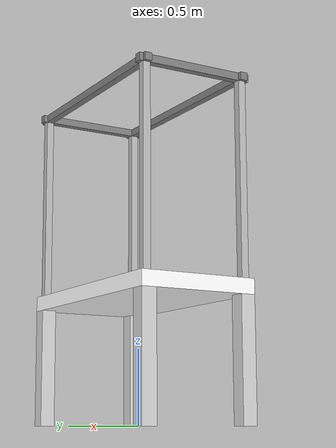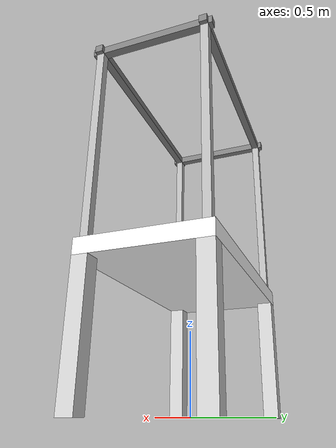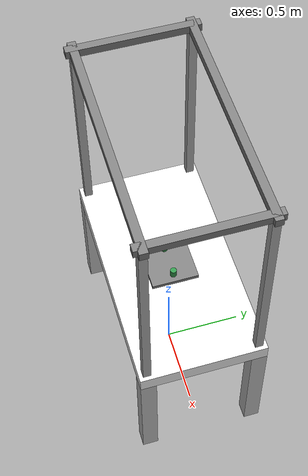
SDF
<?xml version="1.0" ?>
<sdf version="1.6">
  <model name="mesa_completa_con_cilindros">
    <static>true</static>

    <!-- Mesa -->
    <link name="table_link">
      <!-- Superficie de la mesa -->
      <visual name="table_top">
        <geometry>
          <box>
            <size>1.5 0.8 0.1</size>
          </box>
        </geometry>
        <material>
          <ambient>1 1 1 1</ambient>
          <diffuse>1 1 1 1</diffuse>
        </material>
        <pose>0 0 0.85 0 0 0</pose>
      </visual>

      <!-- Patas de la mesa -->
      <visual name="leg1">
        <geometry>
          <box>
            <size>0.1 0.1 0.8</size>
          </box>
        </geometry>
        <material>
          <ambient>0.8 0.8 0.8 1</ambient>
        </material>
        <pose>-0.7 -0.35 0.4 0 0 0</pose>
      </visual>

      <visual name="leg2">
        <geometry>
          <box>
            <size>0.1 0.1 0.8</size>
          </box>
        </geometry>
        <material>
          <ambient>0.8 0.8 0.8 1</ambient>
        </material>
        <pose>0.7 -0.35 0.4 0 0 0</pose>
      </visual>

      <visual name="leg3">
        <geometry>
          <box>
            <size>0.1 0.1 0.8</size>
          </box>
        </geometry>
        <material>
          <ambient>0.8 0.8 0.8 1</ambient>
        </material>
        <pose>-0.7 0.35 0.4 0 0 0</pose>
      </visual>

      <visual name="leg4">
        <geometry>
          <box>
            <size>0.1 0.1 0.8</size>
          </box>
        </geometry>
        <material>
          <ambient>0.8 0.8 0.8 1</ambient>
        </material>
        <pose>0.7 0.35 0.4 0 0 0</pose>
      </visual>

      <!-- Columnas verticales -->
      <visual name="columna1">
        <geometry>
          <box>
            <size>0.05 0.05 1.4</size>
          </box>
        </geometry>
        <pose>-0.7 -0.35 1.5 0 0 0</pose>
      </visual>

      <visual name="columna2">
        <geometry>
          <box>
            <size>0.05 0.05 1.4</size>
          </box>
        </geometry>
        <pose>0.7 -0.35 1.5 0 0 0</pose>
      </visual>

      <visual name="columna3">
        <geometry>
          <box>
            <size>0.05 0.05 1.4</size>
          </box>
        </geometry>
        <pose>-0.7 0.35 1.5 0 0 0</pose>
      </visual>

      <visual name="columna4">
        <geometry>
          <box>
            <size>0.05 0.05 1.4</size>
          </box>
        </geometry>
        <pose>0.7 0.35 1.5 0 0 0</pose>
      </visual>

      <!-- Barras horizontales en la parte superior -->
      <visual name="barra_frontal">
        <geometry>
          <box>
            <size>1.5 0.05 0.05</size>
          </box>
        </geometry>
        <material>
          <ambient>0.5 0.5 0.5 1</ambient>
        </material>
        <pose>0 0.35 2.2 0 0 0</pose>
      </visual>

      <visual name="barra_trasera">
        <geometry>
          <box>
            <size>1.5 0.05 0.05</size>
          </box>
        </geometry>
        <material>
          <ambient>0.5 0.5 0.5 1</ambient>
        </material>
        <pose>0 -0.35 2.2 0 0 0</pose>
      </visual>

      <visual name="barra_lateral_izquierda">
        <geometry>
          <box>
            <size>0.05 0.8 0.05</size>
          </box>
        </geometry>
        <material>
          <ambient>0.5 0.5 0.5 1</ambient>
        </material>
        <pose>-0.7 0 2.2 0 0 0</pose>
      </visual>

      <visual name="barra_lateral_derecha">
        <geometry>
          <box>
            <size>0.05 0.8 0.05</size>
          </box>
        </geometry>
        <material>
          <ambient>0.5 0.5 0.5 1</ambient>
        </material>
        <pose>0.7 0 2.2 0 0 0</pose>
      </visual>
    </link>

    <!-- Base con cilindros encima -->
    <link name="base_link">
      <visual name="base_visual">
        <geometry>
          <box>
            <size>0.3 0.3 0.05</size>
          </box>
        </geometry>
        <material>
          <ambient>0.5 0.5 0.5 1</ambient>
        </material>
        <pose>0 0 0.9 0 0 0</pose>
      </visual>

      <!-- Cilindros -->
      <visual name="cylinder_1">
        <geometry>
          <cylinder>
            <radius>0.02</radius>
            <length>0.1</length>
          </cylinder>
        </geometry>
        <material>
          <ambient>0.2 0.6 0.3 1</ambient>
        </material>
        <pose>-0.1 0 0.925 0 0 0</pose>
      </visual>
      <visual name="cylinder_2">
        <geometry>
          <cylinder>
            <radius>0.02</radius>
            <length>0.1</length>
          </cylinder>
        </geometry>
        <material>
          <ambient>0.2 0.6 0.3 1</ambient>
        </material>
        <pose>0.1 0 0.925 0 0 0</pose>
      </visual>
    </link>
  </model>
</sdf>
